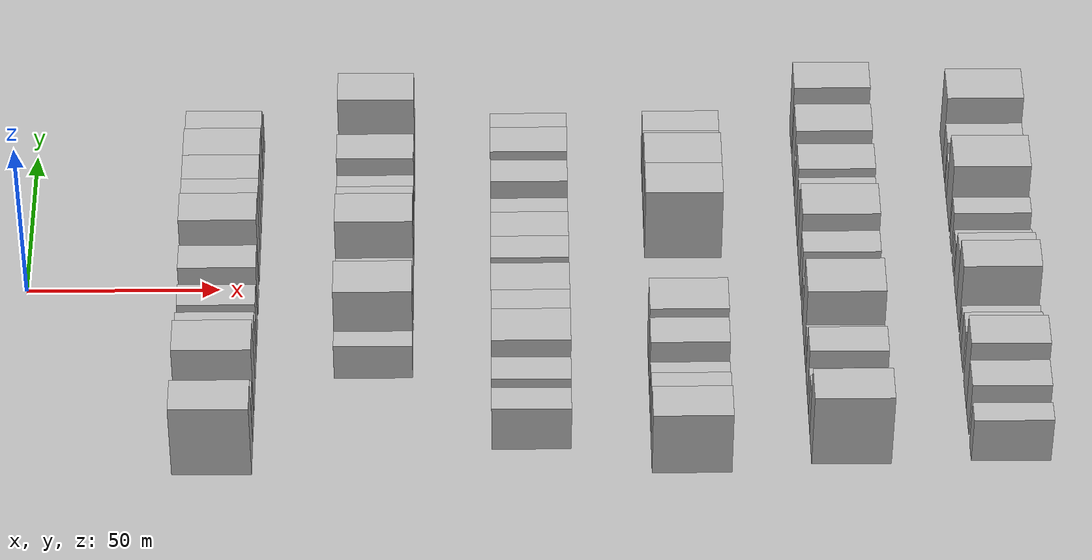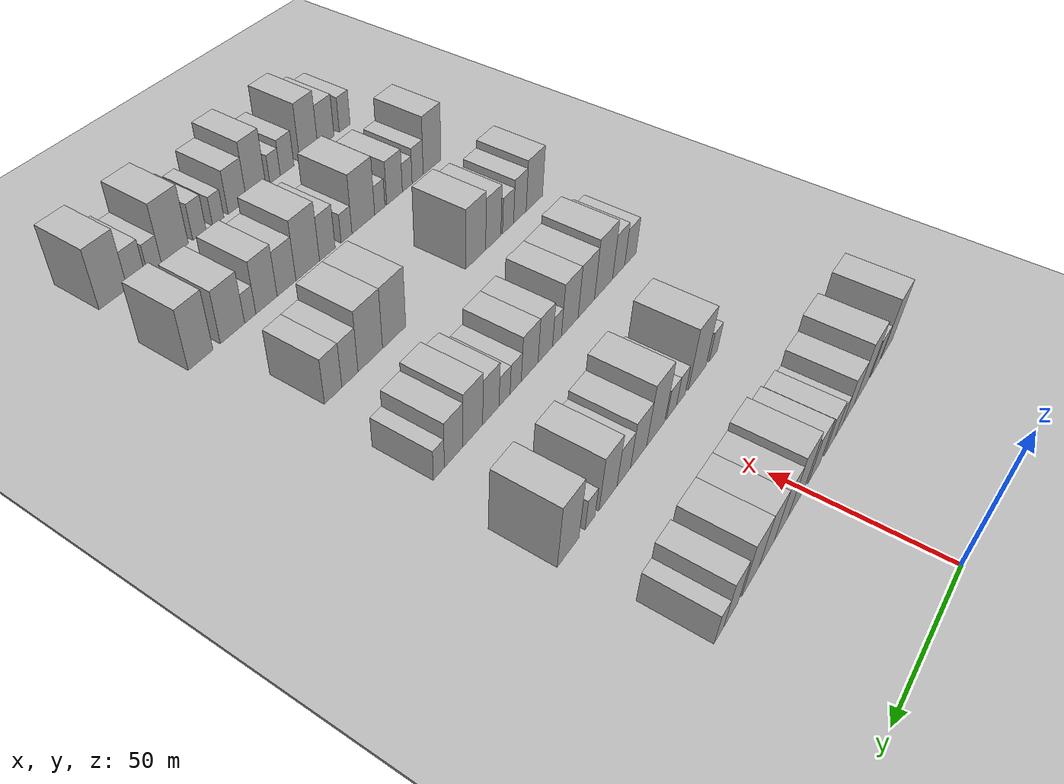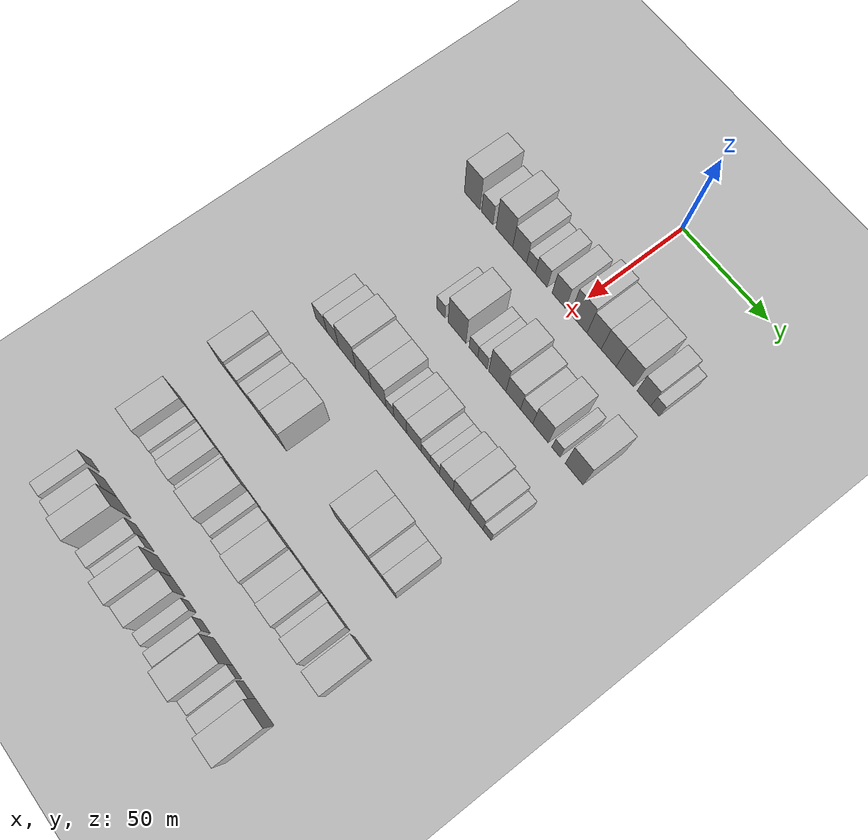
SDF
<sdf version="1.6">
 <world name="default">
  <include><name>ground_plane_1</name><uri>model://HANNAS_ground_plane</uri></include>
  <include>
   <name>ground_plane_2</name>
   <uri>model://HANNAS_ground_plane</uri>
   <pose>100 0 0  0 0 0</pose>
  </include>
  <model name="building_64">
   <static>1</static>
   <pose>50.0000 -60.9618 0 0.000000 0.000000 0.000000</pose>
   <link name="link">
    <pose>0 0 12.00 0 0 0</pose>
    <collision name="collision"><geometry><box><size>20.0000 10.1624 24.0000</size></box></geometry></collision>
    <visual name="visual">
     <cast_shadows>0</cast_shadows>
     <geometry><box><size>20.0000 10.1624 24.0000</size></box></geometry>
     <material>
      <script>
       <uri>model://HANNAS_wall/materials/scripts</uri>
       <uri>model://HANNAS_wall/materials/textures</uri>
       <name>vrc/HANNAS_wall</name>
      </script>
     </material>
    </visual>
   </link>
  </model>
  <model name="building_65">
   <static>1</static>
   <pose>50.0000 -51.1934 0 0.000000 0.000000 0.000000</pose>
   <link name="link">
    <pose>0 0 7.50 0 0 0</pose>
    <collision name="collision"><geometry><box><size>20.0000 7.3745 15.0000</size></box></geometry></collision>
    <visual name="visual">
     <cast_shadows>0</cast_shadows>
     <geometry><box><size>20.0000 7.3745 15.0000</size></box></geometry>
     <material>
      <script>
       <uri>model://HANNAS_wall/materials/scripts</uri>
       <uri>model://HANNAS_wall/materials/textures</uri>
       <name>vrc/HANNAS_wall</name>
      </script>
     </material>
    </visual>
   </link>
  </model>
  <model name="building_66">
   <static>1</static>
   <pose>50.0000 -40.1853 0 0.000000 0.000000 0.000000</pose>
   <link name="link">
    <pose>0 0 12.00 0 0 0</pose>
    <collision name="collision"><geometry><box><size>20.0000 10.6417 24.0000</size></box></geometry></collision>
    <visual name="visual">
     <cast_shadows>0</cast_shadows>
     <geometry><box><size>20.0000 10.6417 24.0000</size></box></geometry>
     <material>
      <script>
       <uri>model://HANNAS_wall/materials/scripts</uri>
       <uri>model://HANNAS_wall/materials/textures</uri>
       <name>vrc/HANNAS_wall</name>
      </script>
     </material>
    </visual>
   </link>
  </model>
  <model name="building_67">
   <static>1</static>
   <pose>50.0000 -30.4610 0 0.000000 0.000000 0.000000</pose>
   <link name="link">
    <pose>0 0 9.00 0 0 0</pose>
    <collision name="collision"><geometry><box><size>20.0000 8.8069 18.0000</size></box></geometry></collision>
    <visual name="visual">
     <cast_shadows>0</cast_shadows>
     <geometry><box><size>20.0000 8.8069 18.0000</size></box></geometry>
     <material>
      <script>
       <uri>model://HANNAS_wall/materials/scripts</uri>
       <uri>model://HANNAS_wall/materials/textures</uri>
       <name>vrc/HANNAS_wall</name>
      </script>
     </material>
    </visual>
   </link>
  </model>
  <model name="building_68">
   <static>1</static>
   <pose>50.0000 -23.3098 0 0.000000 0.000000 0.000000</pose>
   <link name="link">
    <pose>0 0 6.00 0 0 0</pose>
    <collision name="collision"><geometry><box><size>20.0000 5.4955 12.0000</size></box></geometry></collision>
    <visual name="visual">
     <cast_shadows>0</cast_shadows>
     <geometry><box><size>20.0000 5.4955 12.0000</size></box></geometry>
     <material>
      <script>
       <uri>model://HANNAS_wall/materials/scripts</uri>
       <uri>model://HANNAS_wall/materials/textures</uri>
       <name>vrc/HANNAS_wall</name>
      </script>
     </material>
    </visual>
   </link>
  </model>
  <model name="building_69">
   <static>1</static>
   <pose>50.0000 -16.8440 0 0.000000 0.000000 0.000000</pose>
   <link name="link">
    <pose>0 0 7.50 0 0 0</pose>
    <collision name="collision"><geometry><box><size>20.0000 7.4360 15.0000</size></box></geometry></collision>
    <visual name="visual">
     <cast_shadows>0</cast_shadows>
     <geometry><box><size>20.0000 7.4360 15.0000</size></box></geometry>
     <material>
      <script>
       <uri>model://HANNAS_wall/materials/scripts</uri>
       <uri>model://HANNAS_wall/materials/textures</uri>
       <name>vrc/HANNAS_wall</name>
      </script>
     </material>
    </visual>
   </link>
  </model>
  <model name="building_70">
   <static>1</static>
   <pose>50.0000 -6.0007 0 0.000000 0.000000 0.000000</pose>
   <link name="link">
    <pose>0 0 9.00 0 0 0</pose>
    <collision name="collision"><geometry><box><size>20.0000 8.2507 18.0000</size></box></geometry></collision>
    <visual name="visual">
     <cast_shadows>0</cast_shadows>
     <geometry><box><size>20.0000 8.2507 18.0000</size></box></geometry>
     <material>
      <script>
       <uri>model://HANNAS_wall/materials/scripts</uri>
       <uri>model://HANNAS_wall/materials/textures</uri>
       <name>vrc/HANNAS_wall</name>
      </script>
     </material>
    </visual>
   </link>
  </model>
  <model name="building_71">
   <static>1</static>
   <pose>50.0000 6.1612 0 0.000000 0.000000 0.000000</pose>
   <link name="link">
    <pose>0 0 12.00 0 0 0</pose>
    <collision name="collision"><geometry><box><size>20.0000 10.0731 24.0000</size></box></geometry></collision>
    <visual name="visual">
     <cast_shadows>0</cast_shadows>
     <geometry><box><size>20.0000 10.0731 24.0000</size></box></geometry>
     <material>
      <script>
       <uri>model://HANNAS_wall/materials/scripts</uri>
       <uri>model://HANNAS_wall/materials/textures</uri>
       <name>vrc/HANNAS_wall</name>
      </script>
     </material>
    </visual>
   </link>
  </model>
  <model name="building_72">
   <static>1</static>
   <pose>50.0000 15.4533 0 0.000000 0.000000 0.000000</pose>
   <link name="link">
    <pose>0 0 10.50 0 0 0</pose>
    <collision name="collision"><geometry><box><size>20.0000 8.5111 21.0000</size></box></geometry></collision>
    <visual name="visual">
     <cast_shadows>0</cast_shadows>
     <geometry><box><size>20.0000 8.5111 21.0000</size></box></geometry>
     <material>
      <script>
       <uri>model://HANNAS_wall/materials/scripts</uri>
       <uri>model://HANNAS_wall/materials/textures</uri>
       <name>vrc/HANNAS_wall</name>
      </script>
     </material>
    </visual>
   </link>
  </model>
  <model name="building_73">
   <static>1</static>
   <pose>50.0000 24.1919 0 0.000000 0.000000 0.000000</pose>
   <link name="link">
    <pose>0 0 10.50 0 0 0</pose>
    <collision name="collision"><geometry><box><size>20.0000 8.9661 21.0000</size></box></geometry></collision>
    <visual name="visual">
     <cast_shadows>0</cast_shadows>
     <geometry><box><size>20.0000 8.9661 21.0000</size></box></geometry>
     <material>
      <script>
       <uri>model://HANNAS_wall/materials/scripts</uri>
       <uri>model://HANNAS_wall/materials/textures</uri>
       <name>vrc/HANNAS_wall</name>
      </script>
     </material>
    </visual>
   </link>
  </model>
  <model name="building_74">
   <static>1</static>
   <pose>50.0000 33.7555 0 0.000000 0.000000 0.000000</pose>
   <link name="link">
    <pose>0 0 10.50 0 0 0</pose>
    <collision name="collision"><geometry><box><size>20.0000 10.1609 21.0000</size></box></geometry></collision>
    <visual name="visual">
     <cast_shadows>0</cast_shadows>
     <geometry><box><size>20.0000 10.1609 21.0000</size></box></geometry>
     <material>
      <script>
       <uri>model://HANNAS_wall/materials/scripts</uri>
       <uri>model://HANNAS_wall/materials/textures</uri>
       <name>vrc/HANNAS_wall</name>
      </script>
     </material>
    </visual>
   </link>
  </model>
  <model name="building_75">
   <static>1</static>
   <pose>50.0000 44.7522 0 0.000000 0.000000 0.000000</pose>
   <link name="link">
    <pose>0 0 9.00 0 0 0</pose>
    <collision name="collision"><geometry><box><size>20.0000 7.8325 18.0000</size></box></geometry></collision>
    <visual name="visual">
     <cast_shadows>0</cast_shadows>
     <geometry><box><size>20.0000 7.8325 18.0000</size></box></geometry>
     <material>
      <script>
       <uri>model://HANNAS_wall/materials/scripts</uri>
       <uri>model://HANNAS_wall/materials/textures</uri>
       <name>vrc/HANNAS_wall</name>
      </script>
     </material>
    </visual>
   </link>
  </model>
  <model name="building_76">
   <static>1</static>
   <pose>50.0000 51.1709 0 0.000000 0.000000 0.000000</pose>
   <link name="link">
    <pose>0 0 6.00 0 0 0</pose>
    <collision name="collision"><geometry><box><size>20.0000 5.0048 12.0000</size></box></geometry></collision>
    <visual name="visual">
     <cast_shadows>0</cast_shadows>
     <geometry><box><size>20.0000 5.0048 12.0000</size></box></geometry>
     <material>
      <script>
       <uri>model://HANNAS_wall/materials/scripts</uri>
       <uri>model://HANNAS_wall/materials/textures</uri>
       <name>vrc/HANNAS_wall</name>
      </script>
     </material>
    </visual>
   </link>
  </model>
  <model name="building_199">
   <static>1</static>
   <pose>90.0000 -30.0171 0 0.000000 0.000000 0.000000</pose>
   <link name="link">
    <pose>0 0 6.00 0 0 0</pose>
    <collision name="collision"><geometry><box><size>20.0000 5.4162 12.0000</size></box></geometry></collision>
    <visual name="visual">
     <cast_shadows>0</cast_shadows>
     <geometry><box><size>20.0000 5.4162 12.0000</size></box></geometry>
     <material>
      <script>
       <uri>model://HANNAS_wall/materials/scripts</uri>
       <uri>model://HANNAS_wall/materials/textures</uri>
       <name>vrc/HANNAS_wall</name>
      </script>
     </material>
    </visual>
   </link>
  </model>
  <model name="building_200">
   <static>1</static>
   <pose>90.0000 -19.6738 0 0.000000 0.000000 0.000000</pose>
   <link name="link">
    <pose>0 0 12.00 0 0 0</pose>
    <collision name="collision"><geometry><box><size>20.0000 11.2704 24.0000</size></box></geometry></collision>
    <visual name="visual">
     <cast_shadows>0</cast_shadows>
     <geometry><box><size>20.0000 11.2704 24.0000</size></box></geometry>
     <material>
      <script>
       <uri>model://HANNAS_wall/materials/scripts</uri>
       <uri>model://HANNAS_wall/materials/textures</uri>
       <name>vrc/HANNAS_wall</name>
      </script>
     </material>
    </visual>
   </link>
  </model>
  <model name="building_201">
   <static>1</static>
   <pose>90.0000 -9.3684 0 0.000000 0.000000 0.000000</pose>
   <link name="link">
    <pose>0 0 6.00 0 0 0</pose>
    <collision name="collision"><geometry><box><size>20.0000 5.3404 12.0000</size></box></geometry></collision>
    <visual name="visual">
     <cast_shadows>0</cast_shadows>
     <geometry><box><size>20.0000 5.3404 12.0000</size></box></geometry>
     <material>
      <script>
       <uri>model://HANNAS_wall/materials/scripts</uri>
       <uri>model://HANNAS_wall/materials/textures</uri>
       <name>vrc/HANNAS_wall</name>
      </script>
     </material>
    </visual>
   </link>
  </model>
  <model name="building_202">
   <static>1</static>
   <pose>90.0000 -3.7486 0 0.000000 0.000000 0.000000</pose>
   <link name="link">
    <pose>0 0 6.00 0 0 0</pose>
    <collision name="collision"><geometry><box><size>20.0000 5.8993 12.0000</size></box></geometry></collision>
    <visual name="visual">
     <cast_shadows>0</cast_shadows>
     <geometry><box><size>20.0000 5.8993 12.0000</size></box></geometry>
     <material>
      <script>
       <uri>model://HANNAS_wall/materials/scripts</uri>
       <uri>model://HANNAS_wall/materials/textures</uri>
       <name>vrc/HANNAS_wall</name>
      </script>
     </material>
    </visual>
   </link>
  </model>
  <model name="building_203">
   <static>1</static>
   <pose>90.0000 5.4552 0 0.000000 0.000000 0.000000</pose>
   <link name="link">
    <pose>0 0 12.00 0 0 0</pose>
    <collision name="collision"><geometry><box><size>20.0000 10.5083 24.0000</size></box></geometry></collision>
    <visual name="visual">
     <cast_shadows>0</cast_shadows>
     <geometry><box><size>20.0000 10.5083 24.0000</size></box></geometry>
     <material>
      <script>
       <uri>model://HANNAS_wall/materials/scripts</uri>
       <uri>model://HANNAS_wall/materials/textures</uri>
       <name>vrc/HANNAS_wall</name>
      </script>
     </material>
    </visual>
   </link>
  </model>
  <model name="building_204">
   <static>1</static>
   <pose>90.0000 15.1611 0 0.000000 0.000000 0.000000</pose>
   <link name="link">
    <pose>0 0 9.00 0 0 0</pose>
    <collision name="collision"><geometry><box><size>20.0000 8.9034 18.0000</size></box></geometry></collision>
    <visual name="visual">
     <cast_shadows>0</cast_shadows>
     <geometry><box><size>20.0000 8.9034 18.0000</size></box></geometry>
     <material>
      <script>
       <uri>model://HANNAS_wall/materials/scripts</uri>
       <uri>model://HANNAS_wall/materials/textures</uri>
       <name>vrc/HANNAS_wall</name>
      </script>
     </material>
    </visual>
   </link>
  </model>
  <model name="building_205">
   <static>1</static>
   <pose>90.0000 23.2585 0 0.000000 0.000000 0.000000</pose>
   <link name="link">
    <pose>0 0 7.50 0 0 0</pose>
    <collision name="collision"><geometry><box><size>20.0000 7.2914 15.0000</size></box></geometry></collision>
    <visual name="visual">
     <cast_shadows>0</cast_shadows>
     <geometry><box><size>20.0000 7.2914 15.0000</size></box></geometry>
     <material>
      <script>
       <uri>model://HANNAS_wall/materials/scripts</uri>
       <uri>model://HANNAS_wall/materials/textures</uri>
       <name>vrc/HANNAS_wall</name>
      </script>
     </material>
    </visual>
   </link>
  </model>
  <model name="building_206">
   <static>1</static>
   <pose>90.0000 31.5526 0 0.000000 0.000000 0.000000</pose>
   <link name="link">
    <pose>0 0 10.50 0 0 0</pose>
    <collision name="collision"><geometry><box><size>20.0000 9.2969 21.0000</size></box></geometry></collision>
    <visual name="visual">
     <cast_shadows>0</cast_shadows>
     <geometry><box><size>20.0000 9.2969 21.0000</size></box></geometry>
     <material>
      <script>
       <uri>model://HANNAS_wall/materials/scripts</uri>
       <uri>model://HANNAS_wall/materials/textures</uri>
       <name>vrc/HANNAS_wall</name>
      </script>
     </material>
    </visual>
   </link>
  </model>
  <model name="building_207">
   <static>1</static>
   <pose>90.0000 40.6612 0 0.000000 0.000000 0.000000</pose>
   <link name="link">
    <pose>0 0 6.00 0 0 0</pose>
    <collision name="collision"><geometry><box><size>20.0000 4.9201 12.0000</size></box></geometry></collision>
    <visual name="visual">
     <cast_shadows>0</cast_shadows>
     <geometry><box><size>20.0000 4.9201 12.0000</size></box></geometry>
     <material>
      <script>
       <uri>model://HANNAS_wall/materials/scripts</uri>
       <uri>model://HANNAS_wall/materials/textures</uri>
       <name>vrc/HANNAS_wall</name>
      </script>
     </material>
    </visual>
   </link>
  </model>
  <model name="building_208">
   <static>1</static>
   <pose>90.0000 51.2862 0 0.000000 0.000000 0.000000</pose>
   <link name="link">
    <pose>0 0 12.00 0 0 0</pose>
    <collision name="collision"><geometry><box><size>20.0000 10.3299 24.0000</size></box></geometry></collision>
    <visual name="visual">
     <cast_shadows>0</cast_shadows>
     <geometry><box><size>20.0000 10.3299 24.0000</size></box></geometry>
     <material>
      <script>
       <uri>model://HANNAS_wall/materials/scripts</uri>
       <uri>model://HANNAS_wall/materials/textures</uri>
       <name>vrc/HANNAS_wall</name>
      </script>
     </material>
    </visual>
   </link>
  </model>
  <model name="building_342">
   <static>1</static>
   <pose>130.0000 -54.1719 0 0.000000 0.000000 0.000000</pose>
   <link name="link">
    <pose>0 0 7.50 0 0 0</pose>
    <collision name="collision"><geometry><box><size>20.0000 7.4906 15.0000</size></box></geometry></collision>
    <visual name="visual">
     <cast_shadows>0</cast_shadows>
     <geometry><box><size>20.0000 7.4906 15.0000</size></box></geometry>
     <material>
      <script>
       <uri>model://HANNAS_wall/materials/scripts</uri>
       <uri>model://HANNAS_wall/materials/textures</uri>
       <name>vrc/HANNAS_wall</name>
      </script>
     </material>
    </visual>
   </link>
  </model>
  <model name="building_343">
   <static>1</static>
   <pose>130.0000 -46.5456 0 0.000000 0.000000 0.000000</pose>
   <link name="link">
    <pose>0 0 9.00 0 0 0</pose>
    <collision name="collision"><geometry><box><size>20.0000 7.7619 18.0000</size></box></geometry></collision>
    <visual name="visual">
     <cast_shadows>0</cast_shadows>
     <geometry><box><size>20.0000 7.7619 18.0000</size></box></geometry>
     <material>
      <script>
       <uri>model://HANNAS_wall/materials/scripts</uri>
       <uri>model://HANNAS_wall/materials/textures</uri>
       <name>vrc/HANNAS_wall</name>
      </script>
     </material>
    </visual>
   </link>
  </model>
  <model name="building_344">
   <static>1</static>
   <pose>130.0000 -37.0644 0 0.000000 0.000000 0.000000</pose>
   <link name="link">
    <pose>0 0 12.00 0 0 0</pose>
    <collision name="collision"><geometry><box><size>20.0000 11.2007 24.0000</size></box></geometry></collision>
    <visual name="visual">
     <cast_shadows>0</cast_shadows>
     <geometry><box><size>20.0000 11.2007 24.0000</size></box></geometry>
     <material>
      <script>
       <uri>model://HANNAS_wall/materials/scripts</uri>
       <uri>model://HANNAS_wall/materials/textures</uri>
       <name>vrc/HANNAS_wall</name>
      </script>
     </material>
    </visual>
   </link>
  </model>
  <model name="building_345">
   <static>1</static>
   <pose>130.0000 -26.5704 0 0.000000 0.000000 0.000000</pose>
   <link name="link">
    <pose>0 0 10.50 0 0 0</pose>
    <collision name="collision"><geometry><box><size>20.0000 9.7872 21.0000</size></box></geometry></collision>
    <visual name="visual">
     <cast_shadows>0</cast_shadows>
     <geometry><box><size>20.0000 9.7872 21.0000</size></box></geometry>
     <material>
      <script>
       <uri>model://HANNAS_wall/materials/scripts</uri>
       <uri>model://HANNAS_wall/materials/textures</uri>
       <name>vrc/HANNAS_wall</name>
      </script>
     </material>
    </visual>
   </link>
  </model>
  <model name="building_346">
   <static>1</static>
   <pose>130.0000 -16.8617 0 0.000000 0.000000 0.000000</pose>
   <link name="link">
    <pose>0 0 10.50 0 0 0</pose>
    <collision name="collision"><geometry><box><size>20.0000 9.6304 21.0000</size></box></geometry></collision>
    <visual name="visual">
     <cast_shadows>0</cast_shadows>
     <geometry><box><size>20.0000 9.6304 21.0000</size></box></geometry>
     <material>
      <script>
       <uri>model://HANNAS_wall/materials/scripts</uri>
       <uri>model://HANNAS_wall/materials/textures</uri>
       <name>vrc/HANNAS_wall</name>
      </script>
     </material>
    </visual>
   </link>
  </model>
  <model name="building_347">
   <static>1</static>
   <pose>130.0000 -9.5665 0 0.000000 0.000000 0.000000</pose>
   <link name="link">
    <pose>0 0 6.00 0 0 0</pose>
    <collision name="collision"><geometry><box><size>20.0000 4.9599 12.0000</size></box></geometry></collision>
    <visual name="visual">
     <cast_shadows>0</cast_shadows>
     <geometry><box><size>20.0000 4.9599 12.0000</size></box></geometry>
     <material>
      <script>
       <uri>model://HANNAS_wall/materials/scripts</uri>
       <uri>model://HANNAS_wall/materials/textures</uri>
       <name>vrc/HANNAS_wall</name>
      </script>
     </material>
    </visual>
   </link>
  </model>
  <model name="building_348">
   <static>1</static>
   <pose>130.0000 -3.1182 0 0.000000 0.000000 0.000000</pose>
   <link name="link">
    <pose>0 0 9.00 0 0 0</pose>
    <collision name="collision"><geometry><box><size>20.0000 7.9367 18.0000</size></box></geometry></collision>
    <visual name="visual">
     <cast_shadows>0</cast_shadows>
     <geometry><box><size>20.0000 7.9367 18.0000</size></box></geometry>
     <material>
      <script>
       <uri>model://HANNAS_wall/materials/scripts</uri>
       <uri>model://HANNAS_wall/materials/textures</uri>
       <name>vrc/HANNAS_wall</name>
      </script>
     </material>
    </visual>
   </link>
  </model>
  <model name="building_349">
   <static>1</static>
   <pose>130.0000 5.3115 0 0.000000 0.000000 0.000000</pose>
   <link name="link">
    <pose>0 0 9.00 0 0 0</pose>
    <collision name="collision"><geometry><box><size>20.0000 8.9228 18.0000</size></box></geometry></collision>
    <visual name="visual">
     <cast_shadows>0</cast_shadows>
     <geometry><box><size>20.0000 8.9228 18.0000</size></box></geometry>
     <material>
      <script>
       <uri>model://HANNAS_wall/materials/scripts</uri>
       <uri>model://HANNAS_wall/materials/textures</uri>
       <name>vrc/HANNAS_wall</name>
      </script>
     </material>
    </visual>
   </link>
  </model>
  <model name="building_350">
   <static>1</static>
   <pose>130.0000 12.6606 0 0.000000 0.000000 0.000000</pose>
   <link name="link">
    <pose>0 0 6.00 0 0 0</pose>
    <collision name="collision"><geometry><box><size>20.0000 5.7754 12.0000</size></box></geometry></collision>
    <visual name="visual">
     <cast_shadows>0</cast_shadows>
     <geometry><box><size>20.0000 5.7754 12.0000</size></box></geometry>
     <material>
      <script>
       <uri>model://HANNAS_wall/materials/scripts</uri>
       <uri>model://HANNAS_wall/materials/textures</uri>
       <name>vrc/HANNAS_wall</name>
      </script>
     </material>
    </visual>
   </link>
  </model>
  <model name="building_351">
   <static>1</static>
   <pose>130.0000 18.3420 0 0.000000 0.000000 0.000000</pose>
   <link name="link">
    <pose>0 0 6.00 0 0 0</pose>
    <collision name="collision"><geometry><box><size>20.0000 5.5874 12.0000</size></box></geometry></collision>
    <visual name="visual">
     <cast_shadows>0</cast_shadows>
     <geometry><box><size>20.0000 5.5874 12.0000</size></box></geometry>
     <material>
      <script>
       <uri>model://HANNAS_wall/materials/scripts</uri>
       <uri>model://HANNAS_wall/materials/textures</uri>
       <name>vrc/HANNAS_wall</name>
      </script>
     </material>
    </visual>
   </link>
  </model>
  <model name="building_352">
   <static>1</static>
   <pose>130.0000 25.1702 0 0.000000 0.000000 0.000000</pose>
   <link name="link">
    <pose>0 0 9.00 0 0 0</pose>
    <collision name="collision"><geometry><box><size>20.0000 8.0691 18.0000</size></box></geometry></collision>
    <visual name="visual">
     <cast_shadows>0</cast_shadows>
     <geometry><box><size>20.0000 8.0691 18.0000</size></box></geometry>
     <material>
      <script>
       <uri>model://HANNAS_wall/materials/scripts</uri>
       <uri>model://HANNAS_wall/materials/textures</uri>
       <name>vrc/HANNAS_wall</name>
      </script>
     </material>
    </visual>
   </link>
  </model>
  <model name="building_353">
   <static>1</static>
   <pose>130.0000 33.8759 0 0.000000 0.000000 0.000000</pose>
   <link name="link">
    <pose>0 0 10.50 0 0 0</pose>
    <collision name="collision"><geometry><box><size>20.0000 9.3423 21.0000</size></box></geometry></collision>
    <visual name="visual">
     <cast_shadows>0</cast_shadows>
     <geometry><box><size>20.0000 9.3423 21.0000</size></box></geometry>
     <material>
      <script>
       <uri>model://HANNAS_wall/materials/scripts</uri>
       <uri>model://HANNAS_wall/materials/textures</uri>
       <name>vrc/HANNAS_wall</name>
      </script>
     </material>
    </visual>
   </link>
  </model>
  <model name="building_354">
   <static>1</static>
   <pose>130.0000 42.8119 0 0.000000 0.000000 0.000000</pose>
   <link name="link">
    <pose>0 0 9.00 0 0 0</pose>
    <collision name="collision"><geometry><box><size>20.0000 8.5298 18.0000</size></box></geometry></collision>
    <visual name="visual">
     <cast_shadows>0</cast_shadows>
     <geometry><box><size>20.0000 8.5298 18.0000</size></box></geometry>
     <material>
      <script>
       <uri>model://HANNAS_wall/materials/scripts</uri>
       <uri>model://HANNAS_wall/materials/textures</uri>
       <name>vrc/HANNAS_wall</name>
      </script>
     </material>
    </visual>
   </link>
  </model>
  <model name="building_355">
   <static>1</static>
   <pose>130.0000 49.5398 0 0.000000 0.000000 0.000000</pose>
   <link name="link">
    <pose>0 0 6.00 0 0 0</pose>
    <collision name="collision"><geometry><box><size>20.0000 4.9260 12.0000</size></box></geometry></collision>
    <visual name="visual">
     <cast_shadows>0</cast_shadows>
     <geometry><box><size>20.0000 4.9260 12.0000</size></box></geometry>
     <material>
      <script>
       <uri>model://HANNAS_wall/materials/scripts</uri>
       <uri>model://HANNAS_wall/materials/textures</uri>
       <name>vrc/HANNAS_wall</name>
      </script>
     </material>
    </visual>
   </link>
  </model>
  <model name="building_478">
   <static>1</static>
   <pose>170.0000 -61.2036 0 0.000000 0.000000 0.000000</pose>
   <link name="link">
    <pose>0 0 10.50 0 0 0</pose>
    <collision name="collision"><geometry><box><size>20.0000 10.2802 21.0000</size></box></geometry></collision>
    <visual name="visual">
     <cast_shadows>0</cast_shadows>
     <geometry><box><size>20.0000 10.2802 21.0000</size></box></geometry>
     <material>
      <script>
       <uri>model://HANNAS_wall/materials/scripts</uri>
       <uri>model://HANNAS_wall/materials/textures</uri>
       <name>vrc/HANNAS_wall</name>
      </script>
     </material>
    </visual>
   </link>
  </model>
  <model name="building_479">
   <static>1</static>
   <pose>170.0000 -52.2379 0 0.000000 0.000000 0.000000</pose>
   <link name="link">
    <pose>0 0 9.00 0 0 0</pose>
    <collision name="collision"><geometry><box><size>20.0000 7.6511 18.0000</size></box></geometry></collision>
    <visual name="visual">
     <cast_shadows>0</cast_shadows>
     <geometry><box><size>20.0000 7.6511 18.0000</size></box></geometry>
     <material>
      <script>
       <uri>model://HANNAS_wall/materials/scripts</uri>
       <uri>model://HANNAS_wall/materials/textures</uri>
       <name>vrc/HANNAS_wall</name>
      </script>
     </material>
    </visual>
   </link>
  </model>
  <model name="building_480">
   <static>1</static>
   <pose>170.0000 -45.1010 0 0.000000 0.000000 0.000000</pose>
   <link name="link">
    <pose>0 0 7.50 0 0 0</pose>
    <collision name="collision"><geometry><box><size>20.0000 6.6227 15.0000</size></box></geometry></collision>
    <visual name="visual">
     <cast_shadows>0</cast_shadows>
     <geometry><box><size>20.0000 6.6227 15.0000</size></box></geometry>
     <material>
      <script>
       <uri>model://HANNAS_wall/materials/scripts</uri>
       <uri>model://HANNAS_wall/materials/textures</uri>
       <name>vrc/HANNAS_wall</name>
      </script>
     </material>
    </visual>
   </link>
  </model>
  <model name="building_481">
   <static>1</static>
   <pose>170.0000 -36.3786 0 0.000000 0.000000 0.000000</pose>
   <link name="link">
    <pose>0 0 10.50 0 0 0</pose>
    <collision name="collision"><geometry><box><size>20.0000 8.8220 21.0000</size></box></geometry></collision>
    <visual name="visual">
     <cast_shadows>0</cast_shadows>
     <geometry><box><size>20.0000 8.8220 21.0000</size></box></geometry>
     <material>
      <script>
       <uri>model://HANNAS_wall/materials/scripts</uri>
       <uri>model://HANNAS_wall/materials/textures</uri>
       <name>vrc/HANNAS_wall</name>
      </script>
     </material>
    </visual>
   </link>
  </model>
  <model name="building_482">
   <static>1</static>
   <pose>170.0000 -26.4355 0 0.000000 0.000000 0.000000</pose>
   <link name="link">
    <pose>0 0 12.00 0 0 0</pose>
    <collision name="collision"><geometry><box><size>20.0000 11.0642 24.0000</size></box></geometry></collision>
    <visual name="visual">
     <cast_shadows>0</cast_shadows>
     <geometry><box><size>20.0000 11.0642 24.0000</size></box></geometry>
     <material>
      <script>
       <uri>model://HANNAS_wall/materials/scripts</uri>
       <uri>model://HANNAS_wall/materials/textures</uri>
       <name>vrc/HANNAS_wall</name>
      </script>
     </material>
    </visual>
   </link>
  </model>
  <model name="building_483">
   <static>1</static>
   <pose>170.0000 15.9023 0 0.000000 0.000000 0.000000</pose>
   <link name="link">
    <pose>0 0 12.00 0 0 0</pose>
    <collision name="collision"><geometry><box><size>20.0000 11.2038 24.0000</size></box></geometry></collision>
    <visual name="visual">
     <cast_shadows>0</cast_shadows>
     <geometry><box><size>20.0000 11.2038 24.0000</size></box></geometry>
     <material>
      <script>
       <uri>model://HANNAS_wall/materials/scripts</uri>
       <uri>model://HANNAS_wall/materials/textures</uri>
       <name>vrc/HANNAS_wall</name>
      </script>
     </material>
    </visual>
   </link>
  </model>
  <model name="building_484">
   <static>1</static>
   <pose>170.0000 27.1798 0 0.000000 0.000000 0.000000</pose>
   <link name="link">
    <pose>0 0 12.00 0 0 0</pose>
    <collision name="collision"><geometry><box><size>20.0000 11.3512 24.0000</size></box></geometry></collision>
    <visual name="visual">
     <cast_shadows>0</cast_shadows>
     <geometry><box><size>20.0000 11.3512 24.0000</size></box></geometry>
     <material>
      <script>
       <uri>model://HANNAS_wall/materials/scripts</uri>
       <uri>model://HANNAS_wall/materials/textures</uri>
       <name>vrc/HANNAS_wall</name>
      </script>
     </material>
    </visual>
   </link>
  </model>
  <model name="building_485">
   <static>1</static>
   <pose>170.0000 36.4724 0 0.000000 0.000000 0.000000</pose>
   <link name="link">
    <pose>0 0 9.00 0 0 0</pose>
    <collision name="collision"><geometry><box><size>20.0000 7.2340 18.0000</size></box></geometry></collision>
    <visual name="visual">
     <cast_shadows>0</cast_shadows>
     <geometry><box><size>20.0000 7.2340 18.0000</size></box></geometry>
     <material>
      <script>
       <uri>model://HANNAS_wall/materials/scripts</uri>
       <uri>model://HANNAS_wall/materials/textures</uri>
       <name>vrc/HANNAS_wall</name>
      </script>
     </material>
    </visual>
   </link>
  </model>
  <model name="building_486">
   <static>1</static>
   <pose>170.0000 43.8881 0 0.000000 0.000000 0.000000</pose>
   <link name="link">
    <pose>0 0 9.00 0 0 0</pose>
    <collision name="collision"><geometry><box><size>20.0000 7.5974 18.0000</size></box></geometry></collision>
    <visual name="visual">
     <cast_shadows>0</cast_shadows>
     <geometry><box><size>20.0000 7.5974 18.0000</size></box></geometry>
     <material>
      <script>
       <uri>model://HANNAS_wall/materials/scripts</uri>
       <uri>model://HANNAS_wall/materials/textures</uri>
       <name>vrc/HANNAS_wall</name>
      </script>
     </material>
    </visual>
   </link>
  </model>
  <model name="building_607">
   <static>1</static>
   <pose>210.0000 -58.4308 0 0.000000 0.000000 0.000000</pose>
   <link name="link">
    <pose>0 0 12.00 0 0 0</pose>
    <collision name="collision"><geometry><box><size>20.0000 10.4555 24.0000</size></box></geometry></collision>
    <visual name="visual">
     <cast_shadows>0</cast_shadows>
     <geometry><box><size>20.0000 10.4555 24.0000</size></box></geometry>
     <material>
      <script>
       <uri>model://HANNAS_wall/materials/scripts</uri>
       <uri>model://HANNAS_wall/materials/textures</uri>
       <name>vrc/HANNAS_wall</name>
      </script>
     </material>
    </visual>
   </link>
  </model>
  <model name="building_608">
   <static>1</static>
   <pose>210.0000 -50.0093 0 0.000000 0.000000 0.000000</pose>
   <link name="link">
    <pose>0 0 7.50 0 0 0</pose>
    <collision name="collision"><geometry><box><size>20.0000 6.3876 15.0000</size></box></geometry></collision>
    <visual name="visual">
     <cast_shadows>0</cast_shadows>
     <geometry><box><size>20.0000 6.3876 15.0000</size></box></geometry>
     <material>
      <script>
       <uri>model://HANNAS_wall/materials/scripts</uri>
       <uri>model://HANNAS_wall/materials/textures</uri>
       <name>vrc/HANNAS_wall</name>
      </script>
     </material>
    </visual>
   </link>
  </model>
  <model name="building_609">
   <static>1</static>
   <pose>210.0000 -44.0509 0 0.000000 0.000000 0.000000</pose>
   <link name="link">
    <pose>0 0 6.00 0 0 0</pose>
    <collision name="collision"><geometry><box><size>20.0000 5.5292 12.0000</size></box></geometry></collision>
    <visual name="visual">
     <cast_shadows>0</cast_shadows>
     <geometry><box><size>20.0000 5.5292 12.0000</size></box></geometry>
     <material>
      <script>
       <uri>model://HANNAS_wall/materials/scripts</uri>
       <uri>model://HANNAS_wall/materials/textures</uri>
       <name>vrc/HANNAS_wall</name>
      </script>
     </material>
    </visual>
   </link>
  </model>
  <model name="building_610">
   <static>1</static>
   <pose>210.0000 -36.9646 0 0.000000 0.000000 0.000000</pose>
   <link name="link">
    <pose>0 0 9.00 0 0 0</pose>
    <collision name="collision"><geometry><box><size>20.0000 8.6434 18.0000</size></box></geometry></collision>
    <visual name="visual">
     <cast_shadows>0</cast_shadows>
     <geometry><box><size>20.0000 8.6434 18.0000</size></box></geometry>
     <material>
      <script>
       <uri>model://HANNAS_wall/materials/scripts</uri>
       <uri>model://HANNAS_wall/materials/textures</uri>
       <name>vrc/HANNAS_wall</name>
      </script>
     </material>
    </visual>
   </link>
  </model>
  <model name="building_611">
   <static>1</static>
   <pose>210.0000 -28.8893 0 0.000000 0.000000 0.000000</pose>
   <link name="link">
    <pose>0 0 6.00 0 0 0</pose>
    <collision name="collision"><geometry><box><size>20.0000 5.5072 12.0000</size></box></geometry></collision>
    <visual name="visual">
     <cast_shadows>0</cast_shadows>
     <geometry><box><size>20.0000 5.5072 12.0000</size></box></geometry>
     <material>
      <script>
       <uri>model://HANNAS_wall/materials/scripts</uri>
       <uri>model://HANNAS_wall/materials/textures</uri>
       <name>vrc/HANNAS_wall</name>
      </script>
     </material>
    </visual>
   </link>
  </model>
  <model name="building_612">
   <static>1</static>
   <pose>210.0000 -20.1731 0 0.000000 0.000000 0.000000</pose>
   <link name="link">
    <pose>0 0 12.00 0 0 0</pose>
    <collision name="collision"><geometry><box><size>20.0000 11.9252 24.0000</size></box></geometry></collision>
    <visual name="visual">
     <cast_shadows>0</cast_shadows>
     <geometry><box><size>20.0000 11.9252 24.0000</size></box></geometry>
     <material>
      <script>
       <uri>model://HANNAS_wall/materials/scripts</uri>
       <uri>model://HANNAS_wall/materials/textures</uri>
       <name>vrc/HANNAS_wall</name>
      </script>
     </material>
    </visual>
   </link>
  </model>
  <model name="building_613">
   <static>1</static>
   <pose>210.0000 -11.4595 0 0.000000 0.000000 0.000000</pose>
   <link name="link">
    <pose>0 0 6.00 0 0 0</pose>
    <collision name="collision"><geometry><box><size>20.0000 5.5020 12.0000</size></box></geometry></collision>
    <visual name="visual">
     <cast_shadows>0</cast_shadows>
     <geometry><box><size>20.0000 5.5020 12.0000</size></box></geometry>
     <material>
      <script>
       <uri>model://HANNAS_wall/materials/scripts</uri>
       <uri>model://HANNAS_wall/materials/textures</uri>
       <name>vrc/HANNAS_wall</name>
      </script>
     </material>
    </visual>
   </link>
  </model>
  <model name="building_614">
   <static>1</static>
   <pose>210.0000 -1.8474 0 0.000000 0.000000 0.000000</pose>
   <link name="link">
    <pose>0 0 9.00 0 0 0</pose>
    <collision name="collision"><geometry><box><size>20.0000 7.7223 18.0000</size></box></geometry></collision>
    <visual name="visual">
     <cast_shadows>0</cast_shadows>
     <geometry><box><size>20.0000 7.7223 18.0000</size></box></geometry>
     <material>
      <script>
       <uri>model://HANNAS_wall/materials/scripts</uri>
       <uri>model://HANNAS_wall/materials/textures</uri>
       <name>vrc/HANNAS_wall</name>
      </script>
     </material>
    </visual>
   </link>
  </model>
  <model name="building_615">
   <static>1</static>
   <pose>210.0000 7.6592 0 0.000000 0.000000 0.000000</pose>
   <link name="link">
    <pose>0 0 12.00 0 0 0</pose>
    <collision name="collision"><geometry><box><size>20.0000 11.2909 24.0000</size></box></geometry></collision>
    <visual name="visual">
     <cast_shadows>0</cast_shadows>
     <geometry><box><size>20.0000 11.2909 24.0000</size></box></geometry>
     <material>
      <script>
       <uri>model://HANNAS_wall/materials/scripts</uri>
       <uri>model://HANNAS_wall/materials/textures</uri>
       <name>vrc/HANNAS_wall</name>
      </script>
     </material>
    </visual>
   </link>
  </model>
  <model name="building_616">
   <static>1</static>
   <pose>210.0000 17.6365 0 0.000000 0.000000 0.000000</pose>
   <link name="link">
    <pose>0 0 9.00 0 0 0</pose>
    <collision name="collision"><geometry><box><size>20.0000 8.6636 18.0000</size></box></geometry></collision>
    <visual name="visual">
     <cast_shadows>0</cast_shadows>
     <geometry><box><size>20.0000 8.6636 18.0000</size></box></geometry>
     <material>
      <script>
       <uri>model://HANNAS_wall/materials/scripts</uri>
       <uri>model://HANNAS_wall/materials/textures</uri>
       <name>vrc/HANNAS_wall</name>
      </script>
     </material>
    </visual>
   </link>
  </model>
  <model name="building_617">
   <static>1</static>
   <pose>210.0000 26.7278 0 0.000000 0.000000 0.000000</pose>
   <link name="link">
    <pose>0 0 10.50 0 0 0</pose>
    <collision name="collision"><geometry><box><size>20.0000 9.5190 21.0000</size></box></geometry></collision>
    <visual name="visual">
     <cast_shadows>0</cast_shadows>
     <geometry><box><size>20.0000 9.5190 21.0000</size></box></geometry>
     <material>
      <script>
       <uri>model://HANNAS_wall/materials/scripts</uri>
       <uri>model://HANNAS_wall/materials/textures</uri>
       <name>vrc/HANNAS_wall</name>
      </script>
     </material>
    </visual>
   </link>
  </model>
  <model name="building_618">
   <static>1</static>
   <pose>210.0000 33.9396 0 0.000000 0.000000 0.000000</pose>
   <link name="link">
    <pose>0 0 6.00 0 0 0</pose>
    <collision name="collision"><geometry><box><size>20.0000 4.9045 12.0000</size></box></geometry></collision>
    <visual name="visual">
     <cast_shadows>0</cast_shadows>
     <geometry><box><size>20.0000 4.9045 12.0000</size></box></geometry>
     <material>
      <script>
       <uri>model://HANNAS_wall/materials/scripts</uri>
       <uri>model://HANNAS_wall/materials/textures</uri>
       <name>vrc/HANNAS_wall</name>
      </script>
     </material>
    </visual>
   </link>
  </model>
  <model name="building_619">
   <static>1</static>
   <pose>210.0000 41.5606 0 0.000000 0.000000 0.000000</pose>
   <link name="link">
    <pose>0 0 10.50 0 0 0</pose>
    <collision name="collision"><geometry><box><size>20.0000 10.3375 21.0000</size></box></geometry></collision>
    <visual name="visual">
     <cast_shadows>0</cast_shadows>
     <geometry><box><size>20.0000 10.3375 21.0000</size></box></geometry>
     <material>
      <script>
       <uri>model://HANNAS_wall/materials/scripts</uri>
       <uri>model://HANNAS_wall/materials/textures</uri>
       <name>vrc/HANNAS_wall</name>
      </script>
     </material>
    </visual>
   </link>
  </model>
  <model name="building_620">
   <static>1</static>
   <pose>210.0000 54.7367 0 0.000000 0.000000 0.000000</pose>
   <link name="link">
    <pose>0 0 12.00 0 0 0</pose>
    <collision name="collision"><geometry><box><size>20.0000 10.0148 24.0000</size></box></geometry></collision>
    <visual name="visual">
     <cast_shadows>0</cast_shadows>
     <geometry><box><size>20.0000 10.0148 24.0000</size></box></geometry>
     <material>
      <script>
       <uri>model://HANNAS_wall/materials/scripts</uri>
       <uri>model://HANNAS_wall/materials/textures</uri>
       <name>vrc/HANNAS_wall</name>
      </script>
     </material>
    </visual>
   </link>
  </model>
  <model name="building_741">
   <static>1</static>
   <pose>250.0000 -59.8316 0 0.000000 0.000000 0.000000</pose>
   <link name="link">
    <pose>0 0 7.50 0 0 0</pose>
    <collision name="collision"><geometry><box><size>20.0000 6.1797 15.0000</size></box></geometry></collision>
    <visual name="visual">
     <cast_shadows>0</cast_shadows>
     <geometry><box><size>20.0000 6.1797 15.0000</size></box></geometry>
     <material>
      <script>
       <uri>model://HANNAS_wall/materials/scripts</uri>
       <uri>model://HANNAS_wall/materials/textures</uri>
       <name>vrc/HANNAS_wall</name>
      </script>
     </material>
    </visual>
   </link>
  </model>
  <model name="building_742">
   <static>1</static>
   <pose>250.0000 -49.2708 0 0.000000 0.000000 0.000000</pose>
   <link name="link">
    <pose>0 0 9.00 0 0 0</pose>
    <collision name="collision"><geometry><box><size>20.0000 8.9419 18.0000</size></box></geometry></collision>
    <visual name="visual">
     <cast_shadows>0</cast_shadows>
     <geometry><box><size>20.0000 8.9419 18.0000</size></box></geometry>
     <material>
      <script>
       <uri>model://HANNAS_wall/materials/scripts</uri>
       <uri>model://HANNAS_wall/materials/textures</uri>
       <name>vrc/HANNAS_wall</name>
      </script>
     </material>
    </visual>
   </link>
  </model>
  <model name="building_743">
   <static>1</static>
   <pose>250.0000 -39.8835 0 0.000000 0.000000 0.000000</pose>
   <link name="link">
    <pose>0 0 12.00 0 0 0</pose>
    <collision name="collision"><geometry><box><size>20.0000 9.8327 24.0000</size></box></geometry></collision>
    <visual name="visual">
     <cast_shadows>0</cast_shadows>
     <geometry><box><size>20.0000 9.8327 24.0000</size></box></geometry>
     <material>
      <script>
       <uri>model://HANNAS_wall/materials/scripts</uri>
       <uri>model://HANNAS_wall/materials/textures</uri>
       <name>vrc/HANNAS_wall</name>
      </script>
     </material>
    </visual>
   </link>
  </model>
  <model name="building_744">
   <static>1</static>
   <pose>250.0000 -28.4044 0 0.000000 0.000000 0.000000</pose>
   <link name="link">
    <pose>0 0 7.50 0 0 0</pose>
    <collision name="collision"><geometry><box><size>20.0000 7.1255 15.0000</size></box></geometry></collision>
    <visual name="visual">
     <cast_shadows>0</cast_shadows>
     <geometry><box><size>20.0000 7.1255 15.0000</size></box></geometry>
     <material>
      <script>
       <uri>model://HANNAS_wall/materials/scripts</uri>
       <uri>model://HANNAS_wall/materials/textures</uri>
       <name>vrc/HANNAS_wall</name>
      </script>
     </material>
    </visual>
   </link>
  </model>
  <model name="building_745">
   <static>1</static>
   <pose>250.0000 -22.1679 0 0.000000 0.000000 0.000000</pose>
   <link name="link">
    <pose>0 0 6.00 0 0 0</pose>
    <collision name="collision"><geometry><box><size>20.0000 5.3475 12.0000</size></box></geometry></collision>
    <visual name="visual">
     <cast_shadows>0</cast_shadows>
     <geometry><box><size>20.0000 5.3475 12.0000</size></box></geometry>
     <material>
      <script>
       <uri>model://HANNAS_wall/materials/scripts</uri>
       <uri>model://HANNAS_wall/materials/textures</uri>
       <name>vrc/HANNAS_wall</name>
      </script>
     </material>
    </visual>
   </link>
  </model>
  <model name="building_746">
   <static>1</static>
   <pose>250.0000 -12.6854 0 0.000000 0.000000 0.000000</pose>
   <link name="link">
    <pose>0 0 12.00 0 0 0</pose>
    <collision name="collision"><geometry><box><size>20.0000 9.6176 24.0000</size></box></geometry></collision>
    <visual name="visual">
     <cast_shadows>0</cast_shadows>
     <geometry><box><size>20.0000 9.6176 24.0000</size></box></geometry>
     <material>
      <script>
       <uri>model://HANNAS_wall/materials/scripts</uri>
       <uri>model://HANNAS_wall/materials/textures</uri>
       <name>vrc/HANNAS_wall</name>
      </script>
     </material>
    </visual>
   </link>
  </model>
  <model name="building_747">
   <static>1</static>
   <pose>250.0000 -3.4387 0 0.000000 0.000000 0.000000</pose>
   <link name="link">
    <pose>0 0 9.00 0 0 0</pose>
    <collision name="collision"><geometry><box><size>20.0000 8.8756 18.0000</size></box></geometry></collision>
    <visual name="visual">
     <cast_shadows>0</cast_shadows>
     <geometry><box><size>20.0000 8.8756 18.0000</size></box></geometry>
     <material>
      <script>
       <uri>model://HANNAS_wall/materials/scripts</uri>
       <uri>model://HANNAS_wall/materials/textures</uri>
       <name>vrc/HANNAS_wall</name>
      </script>
     </material>
    </visual>
   </link>
  </model>
  <model name="building_748">
   <static>1</static>
   <pose>250.0000 5.6275 0 0.000000 0.000000 0.000000</pose>
   <link name="link">
    <pose>0 0 6.00 0 0 0</pose>
    <collision name="collision"><geometry><box><size>20.0000 5.2568 12.0000</size></box></geometry></collision>
    <visual name="visual">
     <cast_shadows>0</cast_shadows>
     <geometry><box><size>20.0000 5.2568 12.0000</size></box></geometry>
     <material>
      <script>
       <uri>model://HANNAS_wall/materials/scripts</uri>
       <uri>model://HANNAS_wall/materials/textures</uri>
       <name>vrc/HANNAS_wall</name>
      </script>
     </material>
    </visual>
   </link>
  </model>
  <model name="building_749">
   <static>1</static>
   <pose>250.0000 14.2828 0 0.000000 0.000000 0.000000</pose>
   <link name="link">
    <pose>0 0 7.50 0 0 0</pose>
    <collision name="collision"><geometry><box><size>20.0000 6.0538 15.0000</size></box></geometry></collision>
    <visual name="visual">
     <cast_shadows>0</cast_shadows>
     <geometry><box><size>20.0000 6.0538 15.0000</size></box></geometry>
     <material>
      <script>
       <uri>model://HANNAS_wall/materials/scripts</uri>
       <uri>model://HANNAS_wall/materials/textures</uri>
       <name>vrc/HANNAS_wall</name>
      </script>
     </material>
    </visual>
   </link>
  </model>
  <model name="building_750">
   <static>1</static>
   <pose>250.0000 25.2372 0 0.000000 0.000000 0.000000</pose>
   <link name="link">
    <pose>0 0 12.00 0 0 0</pose>
    <collision name="collision"><geometry><box><size>20.0000 11.8550 24.0000</size></box></geometry></collision>
    <visual name="visual">
     <cast_shadows>0</cast_shadows>
     <geometry><box><size>20.0000 11.8550 24.0000</size></box></geometry>
     <material>
      <script>
       <uri>model://HANNAS_wall/materials/scripts</uri>
       <uri>model://HANNAS_wall/materials/textures</uri>
       <name>vrc/HANNAS_wall</name>
      </script>
     </material>
    </visual>
   </link>
  </model>
  <model name="building_751">
   <static>1</static>
   <pose>250.0000 34.0734 0 0.000000 0.000000 0.000000</pose>
   <link name="link">
    <pose>0 0 6.00 0 0 0</pose>
    <collision name="collision"><geometry><box><size>20.0000 5.8174 12.0000</size></box></geometry></collision>
    <visual name="visual">
     <cast_shadows>0</cast_shadows>
     <geometry><box><size>20.0000 5.8174 12.0000</size></box></geometry>
     <material>
      <script>
       <uri>model://HANNAS_wall/materials/scripts</uri>
       <uri>model://HANNAS_wall/materials/textures</uri>
       <name>vrc/HANNAS_wall</name>
      </script>
     </material>
    </visual>
   </link>
  </model>
  <model name="building_752">
   <static>1</static>
   <pose>250.0000 41.6845 0 0.000000 0.000000 0.000000</pose>
   <link name="link">
    <pose>0 0 7.50 0 0 0</pose>
    <collision name="collision"><geometry><box><size>20.0000 7.4048 15.0000</size></box></geometry></collision>
    <visual name="visual">
     <cast_shadows>0</cast_shadows>
     <geometry><box><size>20.0000 7.4048 15.0000</size></box></geometry>
     <material>
      <script>
       <uri>model://HANNAS_wall/materials/scripts</uri>
       <uri>model://HANNAS_wall/materials/textures</uri>
       <name>vrc/HANNAS_wall</name>
      </script>
     </material>
    </visual>
   </link>
  </model>
  <model name="building_753">
   <static>1</static>
   <pose>250.0000 51.0985 0 0.000000 0.000000 0.000000</pose>
   <link name="link">
    <pose>0 0 12.00 0 0 0</pose>
    <collision name="collision"><geometry><box><size>20.0000 11.4231 24.0000</size></box></geometry></collision>
    <visual name="visual">
     <cast_shadows>0</cast_shadows>
     <geometry><box><size>20.0000 11.4231 24.0000</size></box></geometry>
     <material>
      <script>
       <uri>model://HANNAS_wall/materials/scripts</uri>
       <uri>model://HANNAS_wall/materials/textures</uri>
       <name>vrc/HANNAS_wall</name>
      </script>
     </material>
    </visual>
   </link>
  </model>
 </world>
</sdf>
